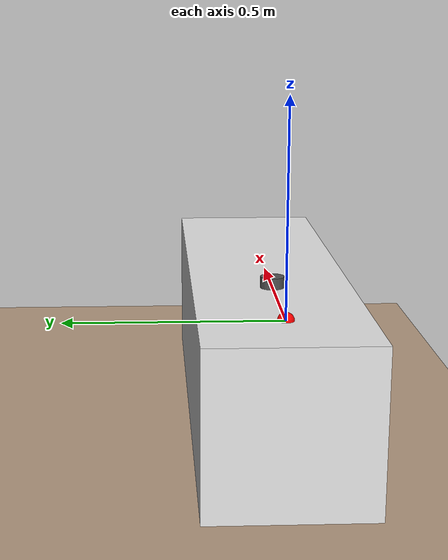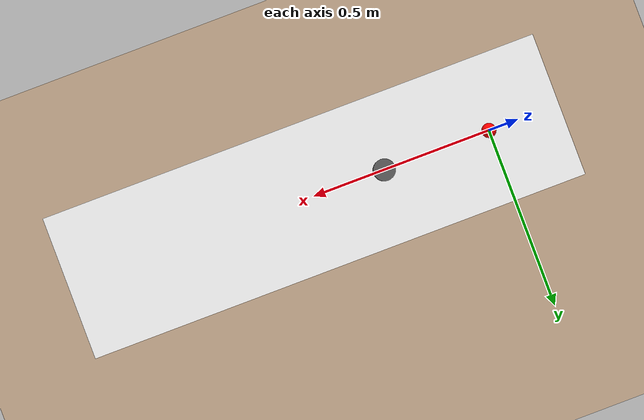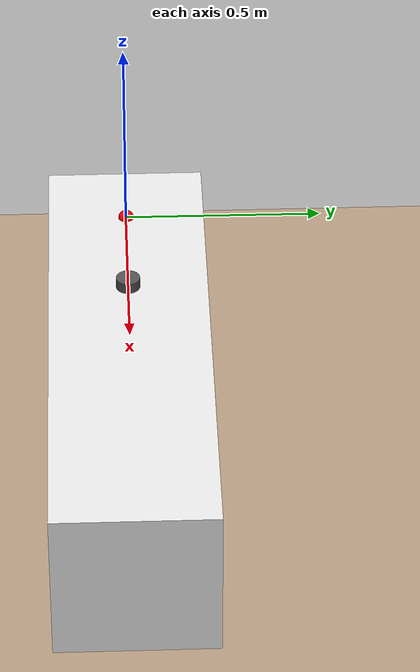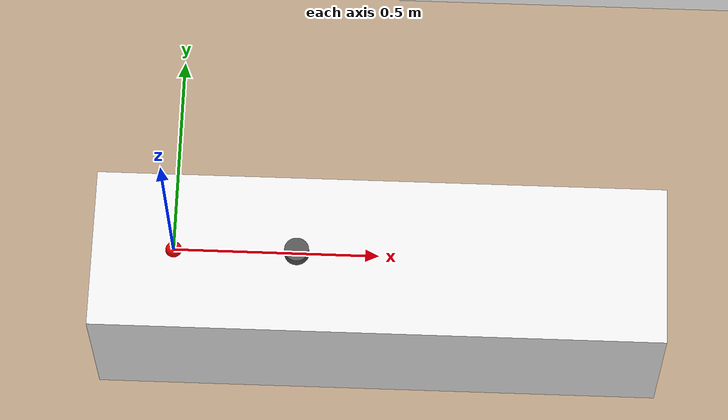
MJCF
<mujoco model="panda">
  <compiler angle="radian" discardvisual="false" meshdir="../meshes_panda/for_mujoco/" />
	<option timestep="0.002">
      <flag warmstart="enable" />
	</option>
      <asset>
    <texture builtin="gradient" height="32" rgb1="0.26 0.58 0.51" rgb2="0.26 0.58 0.51" type="skybox" width="32" />  </asset>
  <size nconmax="2000" njmax="500" />
  <visual>
    <map zfar="1000" znear="0.001" />
  </visual>
  <worldbody>
    <geom name="ground" pos="0 0 -0.4" rgba="0.7 0.6 0.5 1" size="4 4 .05" type="plane" />
    <light castshadow="false" cutoff="100" diffuse="1 1 1" dir="-0 0 -1.3" directional="true" exponent="1" pos="0 0 1.3" specular=".1 .1 .1" />
    <camera euler="0 0 0" fovy="45" ipd="0.0" mode="fixed" name="rgbd_cage" pos="0.7 0.1 0.9" />
      <body name="puck" pos="0.3 0 0.014">
      <joint name="box:x_joint" damping="0.05" type="slide" axis="1 0 0"/>
      <joint name="box:y_joint" damping="0.05" type="slide" axis="0 1 0"/>
      <joint name="box:z_joint" damping="0.05" type="slide" axis="0 0 1"/>
      <geom condim="1"
            density="1000"
            friction="0 0 0"
            name="box:geom1"
            pos="0 0 0"
            priority="1"
            rgba="0.32 0.32 0.32 1"
            size="0.03 0.014"
            solimp="0.998 0.998 0.001"
            solref="0.002 1"
            type="cylinder" />
    </body>
    <body name="table" pos="0.5 0 -0.2">
        <geom type="box" size="0.7 0.2 0.2" rgba=".9 .9 .9 1"/>
    </body>
    <body name="target" pos="0 0 0">
     <site name="target:site1" pos="0 0 0" size="0.02 0.02 0.02" rgba="1 0 0 1" type="sphere"/>
    </body>
    </worldbody>
      <actuator>
        <motor ctrllimited="true" forcelimited="true" ctrlrange="-100 100" forcerange="-87 87"
        joint="box:x_joint" name="puck_x_motor" />
        <motor ctrllimited="true" forcelimited="true" ctrlrange="-100 100" forcerange="-87 87"
        joint="box:y_joint" name="puck_y_motor" />
    </actuator>
</mujoco>
